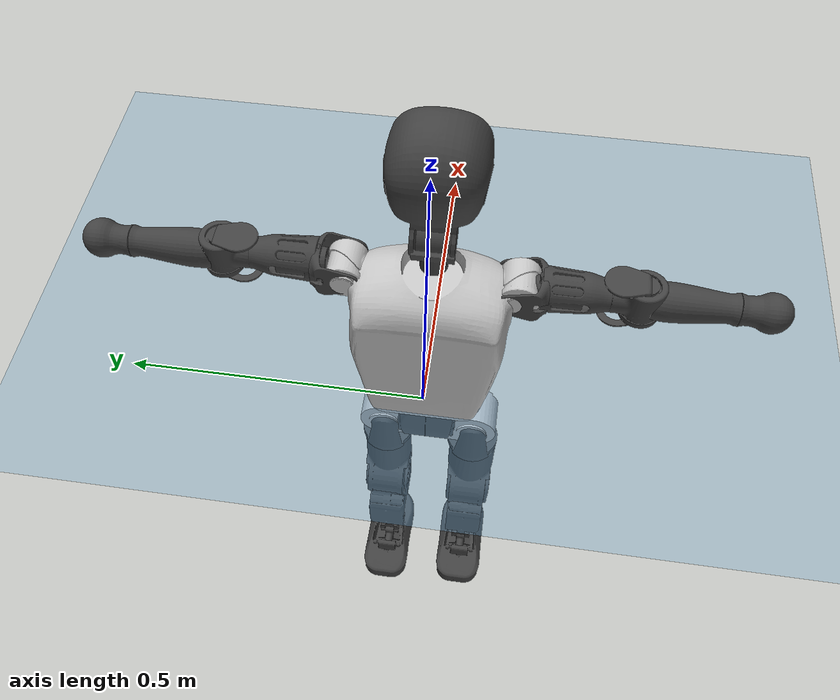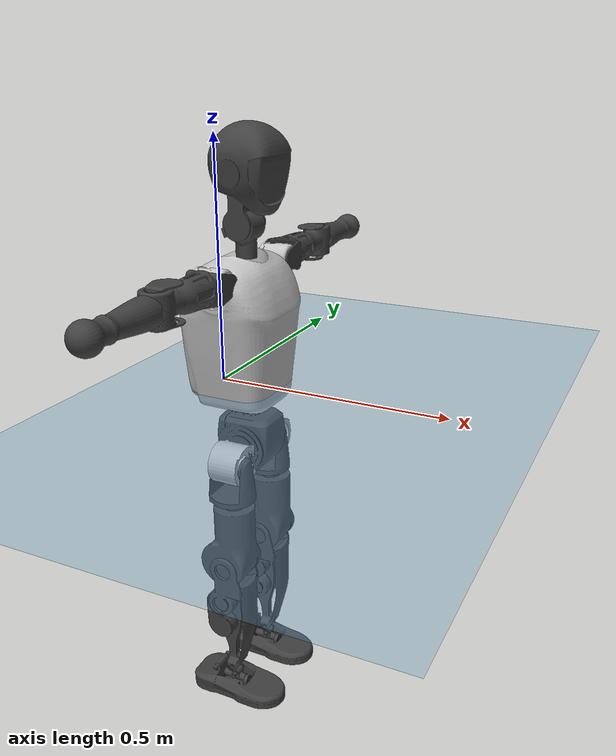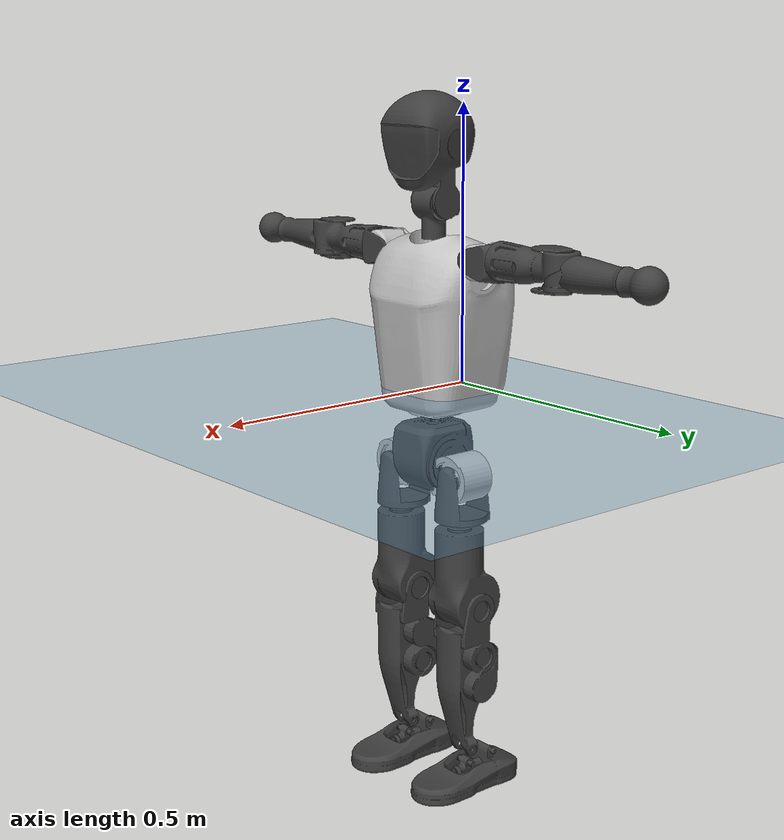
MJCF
<mujoco model="T1">
  <compiler angle="radian" assetdir="assets" balanceinertia="true" inertiafromgeom="false"/>

  <option timestep="0.005" density="1.2" viscosity="2e-05"/>

  <size nkey="1"/>

  <visual>
    <quality shadowsize="8192"/>
    <map shadowclip="0.5"/>
  </visual>

  <default>
    <default class="/">
      <joint armature="0.01" damping="0.01" frictionloss="0.1"/>
      <geom contype="0" conaffinity="0" group="1" solref="-1000 -80"/>
      <site size="0.01 0.005 0.005" group="5"/>
      <general forcelimited="true" biastype="affine" gainprm="25" biasprm="0 -25 -0.6"/>
      <default class="t1">
        <geom rgba="0.25 0.25 0.25 1"/>
        <default class="visual">
          <geom type="mesh" group="2"/>
        </default>
        <default class="collision">
          <geom group="3"/>
        </default>
        <default class="foot">
          <geom size="0.1115 0.05 0.015" type="box" condim="6" group="4" priority="1" solimp="0.015 1 0.015"/>
        </default>
        <default class="reward_collision_sphere">
          <geom group="5" rgba="1 0 0 1"/>
        </default>
      </default>
    </default>
  </default>

  <asset>
    <texture type="skybox" colorspace="auto" name="//unnamed_texture_0" builtin="gradient" rgb1="0.95 0.95 0.95" rgb2="0.95 0.95 0.95" width="100" height="600"/>
    <texture type="2d" colorspace="auto" name="texplane" builtin="checker" rgb1="0.345 0.575 0.748" rgb2="0.345 0.575 0.748" markrgb="1 1 1" width="512" height="512"/>
    <material name="MatPlane" class="/" texture="texplane" texuniform="true" texrepeat="2 2" specular="0.9"/>
    <mesh name="Trunk" class="/" file="Trunk.stl"/>
    <mesh name="H1" class="/" file="H1.stl"/>
    <mesh name="H2" class="/" file="H2.stl"/>
    <mesh name="AL1" class="/" file="AL1.stl"/>
    <mesh name="AL2" class="/" file="AL2.stl"/>
    <mesh name="AL3" class="/" file="AL3.stl"/>
    <mesh name="left_hand_link" class="/" file="left_hand_link.stl"/>
    <mesh name="AR1" class="/" file="AR1.stl"/>
    <mesh name="AR2" class="/" file="AR2.stl"/>
    <mesh name="AR3" class="/" file="AR3.stl"/>
    <mesh name="right_hand_link" class="/" file="right_hand_link.stl"/>
    <mesh name="Waist" class="/" file="Waist.stl"/>
    <mesh name="Hip_Pitch_Left" class="/" file="Hip_Pitch_Left.stl"/>
    <mesh name="Hip_Roll_Left" class="/" file="Hip_Roll_Left.stl"/>
    <mesh name="Hip_Yaw_Left" class="/" file="Hip_Yaw_Left.stl"/>
    <mesh name="Shank_Left" class="/" file="Shank_Left.stl"/>
    <mesh name="Ankle_Cross_Left" class="/" file="Ankle_Cross_Left.stl"/>
    <mesh name="left_foot_link" class="/" file="left_foot_link.stl"/>
    <mesh name="Hip_Pitch_Right" class="/" file="Hip_Pitch_Right.stl"/>
    <mesh name="Hip_Roll_Right" class="/" file="Hip_Roll_Right.stl"/>
    <mesh name="Hip_Yaw_Right" class="/" file="Hip_Yaw_Right.stl"/>
    <mesh name="Shank_Right" class="/" file="Shank_Right.stl"/>
    <mesh name="Ankle_Cross_Right" class="/" file="Ankle_Cross_Right.stl"/>
    <mesh name="right_foot_link" class="/" file="right_foot_link.stl"/>
  </asset>

  <worldbody>
    <geom name="floor" class="/" size="100 100 0.125" type="plane" group="0" material="MatPlane"/>
    <light name="toplight_shadow" class="/" pos="0 0 5" dir="0.0990148 0.0990148 -0.990148" type="directional" ambient="0.04 0.04 0.04" diffuse="0.55 0.55 0.55" specular="0.12 0.12 0.12"/>
    <light name="toplight_fill" class="/" pos="0 0 5" dir="0.0990148 0.0990148 -0.990148" type="directional" castshadow="false" ambient="0.04 0.04 0.04" diffuse="0.3 0.3 0.3" specular="0.08 0.08 0.08"/>
    <body name="trunk" childclass="t1" pos="-0.000290537 -0.0026598 -0.000420347" quat="1 -0.000726226 0.000205795 -0.000194351">
      <inertial pos="0.0590029 -0.00300837 0.11658" quat="0.999882 -0.00311653 -0.0142819 0.00479321" mass="11.2758" diaginertia="0.137171 0.021274 0.0905391"/>
      <joint name="//unnamed_joint_0" type="free" armature="0" damping="0" frictionloss="0"/>
      <geom name="//unnamed_geom_1" class="visual" rgba="0.76 0.76 0.76 1" mesh="Trunk"/>
      <geom name="//unnamed_geom_2" class="collision" size="0.074191 0.0989213 0.148382" pos="0.0653303 0 0.132382" type="box"/>
      <geom name="//unnamed_geom_3" class="reward_collision_sphere" size="0.11376" pos="0.0653303 0 0.110319"/>
      <geom name="//unnamed_geom_4" class="reward_collision_sphere" size="0.0148382" pos="0.0653303 0.0659274 0"/>
      <geom name="//unnamed_geom_5" class="reward_collision_sphere" size="0.0148382" pos="0.0653303 -0.0659274 0"/>
      <geom name="//unnamed_geom_6" class="reward_collision_sphere" size="0.0148382" pos="0.0653303 0.082991 0.198574"/>
      <geom name="//unnamed_geom_7" class="reward_collision_sphere" size="0.0148382" pos="0.0653303 -0.082991 0.198574"/>
      <site name="imu" pos="0.00874193 -0.00012423 -0.00914394" size="0.00989213"/>
      <camera name="track" pos="0 -1.55123 0" quat="0.707107 0.707107 0 0" mode="trackcom"/>
      <camera name="ego_camera" pos="0.132838 0 0.463338" quat="-0.5 -0.5 0.5 0.5"/>
      <body name="H1" pos="0.0664627 -0.000449204 0.26857" quat="1 5.8395e-05 -2.81725e-05 -3.54999e-05">
        <inertial pos="-0.000276448 -0.001493 0.0633295" quat="0.765883 -0.0138326 -0.001197 0.64283" mass="0.436415" diaginertia="0.000362751 6.5385e-05 0.000246065"/>
        <joint name="AAHead_yaw" pos="0 0 0" axis="0.00670005 0.00300293 0.999973" stiffness="0.0047354" range="-1.53331 1.55695" armature="0.00971192" damping="0.00728379" frictionloss="0.0991326"/>
        <geom name="//unnamed_geom_8" class="visual" mesh="H1"/>
        <body name="H2" pos="-0.00381891 0.00191711 0.065891" quat="0.999999 0.00145641 7.63011e-05 0.000180527">
          <inertial pos="0.00902506 -7.92891e-05 0.110034" quat="0.987944 0.111122 -0.0737338 -0.0786233" mass="0.627759" diaginertia="0.00310982 0.000545577 0.00278726"/>
          <joint name="Head_pitch" pos="0 0 0" axis="-0.00954294 -0.999923 -0.00791508" range="-1.21835 0.312289" armature="0.011144" damping="0.00620541" frictionloss="0.102216"/>
          <geom name="//unnamed_geom_9" class="visual" mesh="H2"/>
          <geom name="//unnamed_geom_10" class="collision" size="0.0791371" pos="0.0108884 0 0.12135"/>
          <geom name="//unnamed_geom_11" class="reward_collision_sphere" size="0.0890292" pos="0.0217768 0 0.110319"/>
        </body>
      </body>
      <body name="AL1" pos="0.0658148 0.0835108 0.241981" quat="1 -0.00012513 9.49032e-05 2.58574e-05">
        <inertial pos="-0.00324685 0.0344152 0.000188062" quat="0.504831 0.495018 -0.504647 0.495413" mass="0.497282" diaginertia="0.00203049 0.000354931 0.000458931"/>
        <joint name="Left_Shoulder_Pitch" pos="0 0 0" axis="-0.00236346 0.99995 0.00975592" range="-3.35526 1.20549" armature="0.0100298" damping="0.00974157" frictionloss="0.111778"/>
        <geom name="//unnamed_geom_12" class="visual" rgba="0.76 0.76 0.76 1" mesh="AL1"/>
        <body name="AL2" pos="0.000693043 0.0406557 0.00230133" quat="1 -0.000313572 0.000362804 0.000325636">
          <inertial pos="0.00165495 0.0292568 -0.00279185" quat="0.48578 0.511368 -0.485912 0.516149" mass="0.159377" diaginertia="0.000624047 0.000101937 0.000287491"/>
          <joint name="Left_Shoulder_Roll" pos="0 0 0" axis="-0.999984 -0.00169683 -0.00545006" stiffness="0.00666218" range="-1.5204 1.73182" armature="0.00954069" damping="0" frictionloss="0.100567"/>
          <geom name="//unnamed_geom_13" class="visual" mesh="AL2"/>
          <body name="AL3" pos="0.00344914 0.0480558 0.00320356" quat="1 -0.000228924 0.00010864 0.00088407">
            <inertial pos="0.000134601 0.0666112 0.00221386" quat="0.70287 0.711224 0.0114437 -0.00160068" mass="0.973498" diaginertia="0.0195637 0.00348699 0.000979661"/>
            <joint name="Left_Elbow_Pitch" pos="0 0 0" axis="-0.0143544 -0.999889 -0.00408437" range="-2.25324 2.21262" armature="0.00881021" damping="0.00227781" frictionloss="0.103595"/>
            <geom name="//unnamed_geom_14" class="visual" mesh="AL3"/>
            <geom name="//unnamed_geom_15" class="collision" size="0.0296764 0.074191" pos="0 0.0387808 0" quat="0.707105 0.707108 0 0" type="cylinder"/>
            <geom name="//unnamed_geom_16" class="reward_collision_sphere" size="0.0356117"/>
            <body name="left_hand_link" pos="-0.00159517 0.11614 -0.00136036" quat="1 -0.000146126 -0.000110032 -0.000332782">
              <inertial pos="0.00085527 0.0879677 1.40481e-05" quat="0.701087 0.713061 -0.00169892 -0.00414958" mass="0.317857" diaginertia="0.0123706 0.00234756 0.000349991"/>
              <joint name="Left_Elbow_Yaw" pos="0 0 0" axis="-0.00193229 0.000792814 0.999998" range="-2.43421 0.0259226" armature="0.00946604" damping="0.0254406" frictionloss="0.0942451"/>
              <geom name="//unnamed_geom_17" class="visual" mesh="left_hand_link"/>
              <geom name="//unnamed_geom_18" class="collision" size="0.0296764 0.0865562" pos="0 0.10083 0" quat="0.707105 0.707108 0 0" type="cylinder"/>
              <geom name="//unnamed_geom_19" class="reward_collision_sphere" size="0.0494607"/>
              <geom name="//unnamed_geom_20" class="reward_collision_sphere" size="0.0346225" pos="0 0.0853178 0"/>
              <geom name="//unnamed_geom_21" class="reward_collision_sphere" size="0.0346225" pos="0 0.166758 0"/>
            </body>
          </body>
        </body>
      </body>
      <body name="AR1" pos="0.064784 -0.081449 0.243269" quat="0.999999 0.000152065 0.000604913 0.00147197">
        <inertial pos="-0.00288487 -0.0330934 -0.00188391" quat="0.499784 0.50053 -0.51076 0.488682" mass="0.524718" diaginertia="0.00200368 0.000362682 0.000490512"/>
        <joint name="Right_Shoulder_Pitch" pos="0 0 0" axis="-0.00218362 -0.99999 -0.00390502" stiffness="0.0072744" range="-1.23862 3.25676" armature="0.0101759" damping="0" frictionloss="0.0854184"/>
        <geom name="//unnamed_geom_22" class="visual" rgba="0.76 0.76 0.76 1" mesh="AR1"/>
        <body name="AR2" pos="-0.00133954 -0.0332501 -0.00228161" quat="1 4.64787e-05 2.59093e-05 3.46799e-05">
          <inertial pos="0.00210843 -0.0302063 -0.0018131" quat="0.519222 0.485041 -0.50184 0.493254" mass="0.154633" diaginertia="0.000611057 9.66893e-05 0.000280928"/>
          <joint name="Right_Shoulder_Roll" pos="0 0 0" axis="-0.99995 0.00939274 -0.00349164" range="-1.68231 1.62714" armature="0.00951045" damping="0.0189034" frictionloss="0.0897582"/>
          <geom name="//unnamed_geom_23" class="visual" mesh="AR2"/>
          <body name="AR3" pos="0.00210297 -0.0443434 0.001843" quat="1 -9.32401e-05 -2.68939e-06 -0.000136108">
            <inertial pos="-0.00100749 -0.0661773 -0.0024712" quat="0.706579 0.707632 -0.00168937 -3.52647e-05" mass="0.986368" diaginertia="0.0197185 0.00349175 0.00101768"/>
            <joint name="Right_Elbow_Pitch" pos="0 0 0" axis="-0.000605194 0.999999 -0.00133902" stiffness="0.00810647" range="-2.27598 2.22104" armature="0.00990845" damping="0.0111865" frictionloss="0.1094"/>
            <geom name="//unnamed_geom_24" class="visual" mesh="AR3"/>
            <geom name="//unnamed_geom_25" class="collision" size="0.0296764 0.074191" pos="0 -0.0387808 0" quat="0.707105 0.707108 0 0" type="cylinder"/>
            <geom name="//unnamed_geom_26" class="reward_collision_sphere" size="0.0356117"/>
            <body name="right_hand_link" pos="-0.000545266 -0.113926 0.00034909" quat="1 0.000522544 9.42396e-05 1.84693e-05">
              <inertial pos="-0.000681754 -0.087858 0.000559773" quat="0.705622 0.708588 0.000792444 0.000318006" mass="0.301441" diaginertia="0.0120534 0.00219484 0.000340468"/>
              <joint name="Right_Elbow_Yaw" pos="0 0 0" axis="0.00507107 -0.0056598 0.999971" range="0.0119592 2.48373" armature="0.0100898" damping="0.0130997" frictionloss="0.106965"/>
              <geom name="//unnamed_geom_27" class="visual" mesh="right_hand_link"/>
              <geom name="//unnamed_geom_28" class="collision" size="0.0296764 0.0865562" pos="0 -0.10083 0" quat="0.707105 0.707108 0 0" type="cylinder"/>
              <geom name="//unnamed_geom_29" class="reward_collision_sphere" size="0.0494607"/>
              <geom name="//unnamed_geom_30" class="reward_collision_sphere" size="0.0346225" pos="0 -0.0853178 0"/>
              <geom name="//unnamed_geom_31" class="reward_collision_sphere" size="0.0346225" pos="0 -0.166758 0"/>
            </body>
          </body>
        </body>
      </body>
      <body name="Waist" pos="0.0678158 -0.00226244 -0.12839" quat="0.999999 0.0010411 -2.4408e-05 0.000305266">
        <inertial pos="0.00257629 -0.00254035 0.00947515" quat="0.983689 -0.00118414 -0.179844 0.00336812" mass="2.54389" diaginertia="0.00847936 0.00152401 0.00793585"/>
        <joint name="Waist" pos="0 0 0" axis="-0.00045212 2.54521e-05 1" range="-1.54324 1.56671" armature="0.00928916" damping="0.0202803" frictionloss="0.101391"/>
        <geom name="//unnamed_geom_32" class="visual" mesh="Waist"/>
        <body name="Hip_Pitch_Left" pos="0.000743764 0.0790818 -0.00170928" quat="0.999999 0.000903668 -0.000730755 -7.5686e-05">
          <inertial pos="0.00101244 -0.00866677 -0.0195436" quat="0.974765 0.222767 0.0103159 0.0100781" mass="1.01758" diaginertia="0.00277645 0.000406481 0.00210911"/>
          <joint name="Left_Hip_Pitch" pos="0 0 0" axis="0.00861148 0.999961 0.00183062" stiffness="0.00150578" range="-1.79683 1.55352" armature="0.0110668" damping="0.00757024" frictionloss="0.103677"/>
          <geom name="//unnamed_geom_33" class="visual" rgba="0.76 0.76 0.76 1" mesh="Hip_Pitch_Left"/>
          <body name="Hip_Roll_Left" pos="-0.0017443 -0.00251536 -0.0218512" quat="1 -0.000518142 -0.00021123 0.000510228">
            <inertial pos="0.000119003 -0.000837801 -0.0579462" quat="0.708618 -0.010603 -0.0177345 0.70529" mass="0.37016" diaginertia="0.00270824 0.00042839 0.000854684"/>
            <joint name="Left_Hip_Roll" pos="0 0 0" axis="-0.999985 -0.00115869 -0.00530173" range="-1.5132 0.22122" armature="0.00860872" damping="0.0082183" frictionloss="0.0912581"/>
            <geom name="//unnamed_geom_34" class="visual" mesh="Hip_Roll_Left"/>
            <geom name="//unnamed_geom_35" class="reward_collision_sphere" size="0.0544067"/>
            <body name="Hip_Yaw_Left" pos="0.00383223 0.000245646 -0.0941754" quat="1 8.25904e-06 0.000333395 -4.60215e-05">
              <inertial pos="-0.00836031 0.00191781 -0.0987068" quat="0.698782 -0.0320906 -0.0324075 0.71388" mass="2.02631" diaginertia="0.0399409 0.00701996 0.00424377"/>
              <joint name="Left_Hip_Yaw" pos="0 0 0" axis="-0.00080902 -0.00190289 -0.999998" stiffness="0.00122014" range="-1.04145 0.998576" armature="0.0097962" damping="0.0224041" frictionloss="0.0985481"/>
              <geom name="//unnamed_geom_36" class="visual" mesh="Hip_Yaw_Left"/>
              <geom name="//unnamed_geom_37" class="collision" size="0.0494607 0.0791371" type="cylinder"/>
              <body name="Shank_Left" pos="-0.0168027 -0.000451536 -0.149701" quat="1 -0.000254104 -0.00083898 -0.000112041">
                <inertial pos="-0.00888041 -0.000797253 -0.13706" quat="0.997306 -0.00103687 -0.024599 0.0690943" mass="1.7778" diaginertia="0.0544953 0.0100996 0.00313376"/>
                <joint name="Left_Knee_Pitch" pos="0 0 0" axis="-0.00234403 0.99999 -0.00391622" stiffness="0.00813211" range="0.0505457 2.28578" armature="0.00994038" damping="0" frictionloss="0.0887075"/>
                <geom name="//unnamed_geom_38" class="visual" mesh="Shank_Left"/>
                <geom name="//unnamed_geom_39" class="collision" size="0.0494607 0.074191" pos="0 0 -0.132382" type="cylinder"/>
                <geom name="//unnamed_geom_40" class="reward_collision_sphere" size="0.0642989"/>
                <body name="Ankle_Cross_Left" pos="-0.00118941 0.00119365 -0.31037" quat="1 2.53074e-05 -5.87413e-06 -1.87449e-05">
                  <inertial pos="-0.00669794 0.0015215 -0.00937889" quat="0.44019 0.547432 0.552537 0.448612" mass="0.0717233" diaginertia="4.53792e-05 7.33637e-06 1.91673e-05"/>
                  <joint name="Left_Ankle_Pitch" pos="0 0 0" axis="0.00811143 0.999963 0.00278244" range="-0.849808 0.398866" armature="0.00848888" damping="0.0122089" frictionloss="0.0983444"/>
                  <geom name="//unnamed_geom_41" class="visual" mesh="Ankle_Cross_Left"/>
                  <body name="left_foot_link" pos="-0.00122621 0.000631519 -0.0157435" quat="1 -2.99295e-05 -0.000416315 0.000309203">
                    <inertial pos="-7.68991e-05 0.000762326 -0.0116499" quat="-0.00241305 0.614495 0.0065743 0.78889" mass="0.645331" diaginertia="0.00393394 0.000662862 0.00336313"/>
                    <joint name="Left_Ankle_Roll" pos="0 0 0" axis="-0.999999 -0.000960069 0.000644151" range="-0.422741 0.434229" armature="0.00977846" damping="0" frictionloss="0.10322"/>
                    <geom name="//unnamed_geom_42" class="visual" mesh="left_foot_link"/>
                    <geom name="left_foot" class="foot" size="0.0705103 0.0469282 0.0168734" pos="0.0108884 0 -0.0165478"/>
                    <geom name="//unnamed_geom_44" class="reward_collision_sphere" size="0.0514391" pos="0.0108884 0 -0.0165478"/>
                    <geom name="//unnamed_geom_45" class="reward_collision_sphere" size="0.0296764" pos="0.10344 -0.0178392 -0.0165478"/>
                    <geom name="//unnamed_geom_46" class="reward_collision_sphere" size="0.0296764" pos="-0.0762186 -0.0178392 -0.0165478"/>
                    <site name="left_foot" class="foot" pos="0.0108884 0 -0.0165478" size="0.00989213"/>
                  </body>
                </body>
              </body>
            </body>
          </body>
        </body>
        <body name="Hip_Pitch_Right" pos="-0.00130876 -0.0824438 -0.00159389" quat="1 0.000526744 0.000307379 -0.00039731">
          <inertial pos="-0.000828623 0.00809395 -0.0197063" quat="0.975231 -0.220806 0.0122313 0.00441015" mass="1.02167" diaginertia="0.00277739 0.000409526 0.00198502"/>
          <joint name="Right_Hip_Pitch" pos="0 0 0" axis="-0.00192858 -0.999997 0.00124726" range="-1.60551 1.8077" armature="0.00855406" damping="0.000688305" frictionloss="0.0942212"/>
          <geom name="//unnamed_geom_47" class="visual" rgba="0.76 0.76 0.76 1" mesh="Hip_Pitch_Right"/>
          <body name="Hip_Roll_Right" pos="0.00171609 -0.00391182 -0.024822" quat="1 0.00020425 0.000451287 0.000369997">
            <inertial pos="0.0014126 -0.00146139 -0.0582082" quat="0.714214 -0.0151396 -0.00733425 0.699725" mass="0.381126" diaginertia="0.00271758 0.000433042 0.000853628"/>
            <joint name="Right_Hip_Roll" pos="0 0 0" axis="-0.999998 0.000759467 0.00171402" stiffness="0.000204744" range="-0.201119 1.56859" armature="0.0112806" damping="0.00792364" frictionloss="0.101409"/>
            <geom name="//unnamed_geom_48" class="visual" mesh="Hip_Roll_Right"/>
            <geom name="//unnamed_geom_49" class="reward_collision_sphere" size="0.0544067"/>
            <body name="Hip_Yaw_Right" pos="0.00219623 -0.00298045 -0.0931155" quat="1 3.45858e-05 5.56668e-05 0.000676601">
              <inertial pos="-0.00550242 -0.00199507 -0.0963601" quat="0.714864 -0.0316832 -0.0338006 0.697727" mass="2.16953" diaginertia="0.0398159 0.00719802 0.00418701"/>
              <joint name="Right_Hip_Yaw" pos="0 0 0" axis="0.00195381 -0.00220087 -0.999996" range="-1.0491 0.984809" armature="0.0107703" damping="0.015214" frictionloss="0.0968498"/>
              <geom name="//unnamed_geom_50" class="visual" mesh="Hip_Yaw_Right"/>
              <geom name="//unnamed_geom_51" class="collision" size="0.0494607 0.0791371" type="cylinder"/>
              <body name="Shank_Right" pos="-0.0106622 -0.00133176 -0.146949" quat="1 -1.98721e-05 -2.35432e-05 -2.86605e-06">
                <inertial pos="-0.00741433 0.00153736 -0.136325" quat="0.999372 -0.00313596 -0.0155576 -0.0316877" mass="1.71112" diaginertia="0.052345 0.00987476 0.00314053"/>
                <joint name="Right_Knee_Pitch" pos="0 0 0" axis="-0.000826486 -0.999995 -0.00310658" stiffness="0.00027938" range="-2.32418 -0.0231177" armature="0.00938188" damping="0.0161747" frictionloss="0.0854139"/>
                <geom name="//unnamed_geom_52" class="visual" mesh="Shank_Right"/>
                <geom name="//unnamed_geom_53" class="collision" size="0.0494607 0.074191" pos="0 0 -0.132382" type="cylinder"/>
                <geom name="//unnamed_geom_54" class="reward_collision_sphere" size="0.0642989"/>
                <body name="Ankle_Cross_Right" pos="0.00321438 -0.00113895 -0.305879" quat="0.999999 -0.000833449 0.00057803 0.00021119">
                  <inertial pos="-0.00679055 -0.00206402 -0.0075578" quat="0.449311 0.547432 0.556755 0.434122" mass="0.0701367" diaginertia="4.57057e-05 7.19016e-06 1.83779e-05"/>
                  <joint name="Right_Ankle_Pitch" pos="0 0 0" axis="-0.00877758 -0.999879 0.0128426" range="-0.364505 0.862628" armature="0.00971924" damping="0.00810074" frictionloss="0.094806"/>
                  <geom name="//unnamed_geom_55" class="visual" mesh="Ankle_Cross_Right"/>
                  <body name="right_foot_link" pos="-0.000709865 -0.00059837 -0.015567" quat="1 0.000718113 -0.00019667 -0.000210577">
                    <inertial pos="0.000261718 0.00277608 -0.0109236" quat="0.007106 0.62671 -0.00161343 0.779219" mass="0.639385" diaginertia="0.00410779 0.000663482 0.00347719"/>
                    <joint name="Right_Ankle_Roll" pos="0 0 0" axis="-0.999976 -0.00688788 -0.000638991" range="-0.481615 0.454102" armature="0.0102602" damping="0.00795293" frictionloss="0.0901191"/>
                    <geom name="//unnamed_geom_56" class="visual" mesh="right_foot_link"/>
                    <geom name="right_foot" class="foot" size="0.0668107 0.0449618 0.0159339" pos="0.0108884 0 -0.0165478"/>
                    <geom name="//unnamed_geom_58" class="reward_collision_sphere" size="0.0395685"/>
                    <geom name="//unnamed_geom_59" class="reward_collision_sphere" size="0.0296764" pos="0.0108884 0 -0.0165478"/>
                    <geom name="//unnamed_geom_60" class="reward_collision_sphere" size="0.0296764" pos="0.10344 0.0178392 -0.0165478"/>
                    <geom name="//unnamed_geom_61" class="reward_collision_sphere" size="0.0296764" pos="-0.0762186 0.0178392 -0.0165478"/>
                    <site name="right_foot" class="foot" pos="0.0108884 0 -0.0165478" size="0.00989213"/>
                  </body>
                </body>
              </body>
            </body>
          </body>
        </body>
      </body>
    </body>
  </worldbody>

  <contact>
    <pair class="/" geom1="floor" geom2="left_foot" name="//unnamed_contact_0"/>
    <pair class="/" geom1="floor" geom2="right_foot" name="//unnamed_contact_1"/>
  </contact>

  <actuator>
    <general name="AAHead_yaw" class="/" joint="AAHead_yaw" forcerange="-6.31928 6.31928" gainprm="22.9563" biasprm="0 -22.9563 -0.525201"/>
    <general name="Head_pitch" class="/" joint="Head_pitch" forcerange="-7.41799 7.41799" gainprm="22.9563" biasprm="0 -22.9563 -0.525201"/>
    <general name="Left_Shoulder_Pitch" class="/" joint="Left_Shoulder_Pitch" forcerange="-16.7031 16.7031" gainprm="22.9563" biasprm="0 -22.9563 -0.525201"/>
    <general name="Left_Shoulder_Roll" class="/" joint="Left_Shoulder_Roll" forcerange="-18.0525 18.0525" gainprm="22.9563" biasprm="0 -22.9563 -0.525201"/>
    <general name="Left_Elbow_Pitch" class="/" joint="Left_Elbow_Pitch" forcerange="-17.9498 17.9498" gainprm="22.9563" biasprm="0 -22.9563 -0.525201"/>
    <general name="Left_Elbow_Yaw" class="/" joint="Left_Elbow_Yaw" forcerange="-16.9739 16.9739" gainprm="22.9563" biasprm="0 -22.9563 -0.525201"/>
    <general name="Right_Shoulder_Pitch" class="/" joint="Right_Shoulder_Pitch" forcerange="-18.1375 18.1375" gainprm="22.9563" biasprm="0 -22.9563 -0.525201"/>
    <general name="Right_Shoulder_Roll" class="/" joint="Right_Shoulder_Roll" forcerange="-16.0122 16.0122" gainprm="22.9563" biasprm="0 -22.9563 -0.525201"/>
    <general name="Right_Elbow_Pitch" class="/" joint="Right_Elbow_Pitch" forcerange="-19.328 19.328" gainprm="22.9563" biasprm="0 -22.9563 -0.525201"/>
    <general name="Right_Elbow_Yaw" class="/" joint="Right_Elbow_Yaw" forcerange="-16.319 16.319" gainprm="22.9563" biasprm="0 -22.9563 -0.525201"/>
    <general name="Waist" class="/" joint="Waist" forcerange="-29.4291 29.4291" gainprm="22.9563" biasprm="0 -22.9563 -0.525201"/>
    <general name="Left_Hip_Pitch" class="/" joint="Left_Hip_Pitch" forcerange="-40.2726 40.2726" gainprm="22.9563" biasprm="0 -22.9563 -0.525201"/>
    <general name="Left_Hip_Roll" class="/" joint="Left_Hip_Roll" forcerange="-30.7715 30.7715" gainprm="22.9563" biasprm="0 -22.9563 -0.525201"/>
    <general name="Left_Hip_Yaw" class="/" joint="Left_Hip_Yaw" forcerange="-27.8789 27.8789" gainprm="22.9563" biasprm="0 -22.9563 -0.525201"/>
    <general name="Left_Knee_Pitch" class="/" joint="Left_Knee_Pitch" forcerange="-57.1489 57.1489" gainprm="22.9563" biasprm="0 -22.9563 -0.525201"/>
    <general name="Left_Ankle_Pitch" class="/" joint="Left_Ankle_Pitch" forcerange="-18.7609 18.7609" gainprm="22.9563" biasprm="0 -22.9563 -0.525201"/>
    <general name="Left_Ankle_Roll" class="/" joint="Left_Ankle_Roll" forcerange="-15.9839 15.9839" gainprm="22.9563" biasprm="0 -22.9563 -0.525201"/>
    <general name="Right_Hip_Pitch" class="/" joint="Right_Hip_Pitch" forcerange="-45.4586 45.4586" gainprm="22.9563" biasprm="0 -22.9563 -0.525201"/>
    <general name="Right_Hip_Roll" class="/" joint="Right_Hip_Roll" forcerange="-28.632 28.632" gainprm="22.9563" biasprm="0 -22.9563 -0.525201"/>
    <general name="Right_Hip_Yaw" class="/" joint="Right_Hip_Yaw" forcerange="-29.2229 29.2229" gainprm="22.9563" biasprm="0 -22.9563 -0.525201"/>
    <general name="Right_Knee_Pitch" class="/" joint="Right_Knee_Pitch" forcerange="-63.922 63.922" gainprm="22.9563" biasprm="0 -22.9563 -0.525201"/>
    <general name="Right_Ankle_Pitch" class="/" joint="Right_Ankle_Pitch" forcerange="-19.6031 19.6031" gainprm="22.9563" biasprm="0 -22.9563 -0.525201"/>
    <general name="Right_Ankle_Roll" class="/" joint="Right_Ankle_Roll" forcerange="-15.0046 15.0046" gainprm="22.9563" biasprm="0 -22.9563 -0.525201"/>
  </actuator>

  <sensor>
    <gyro site="imu" name="imu_angular_velocity"/>
    <velocimeter site="imu" name="imu_linear_velocity"/>
    <framelinvel objtype="site" objname="left_foot" name="left_foot_global_linear_velocity"/>
    <framelinvel objtype="site" objname="right_foot" name="right_foot_global_linear_velocity"/>
  </sensor>

  <keyframe>
    <key name="home" qpos="0 0 0.6385 1 0 0 0 0 0 0 1.4 0 -0.4 0 -1.4 0 0.4 0 -0.4 0 0 0.8 -0.4 0 0.4 0 0 -0.8 0.4 0"/>
  </keyframe>
</mujoco>
